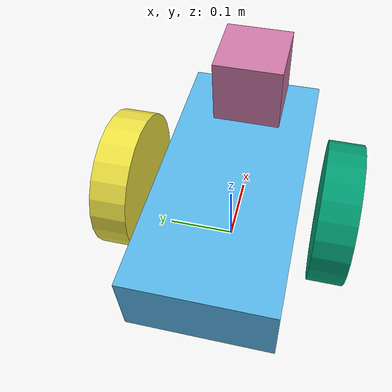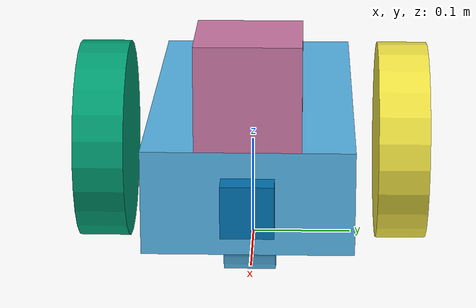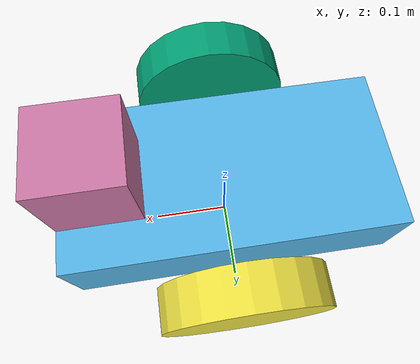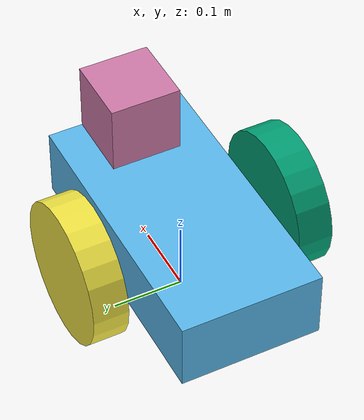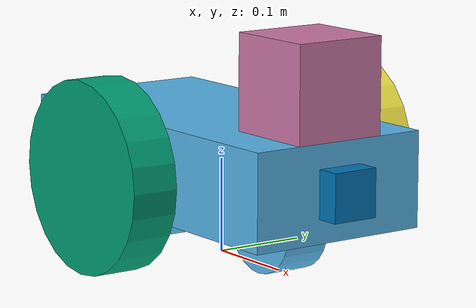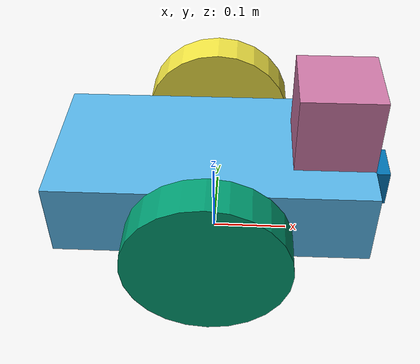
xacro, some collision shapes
<?xml version='1.0'?>

<robot name="my_robot" xmlns:xacro="http://www.ros.org/wiki/xacro">
  <xacro:include filename="$(find my_robot)/urdf/my_robot.gazebo" />
  <link name="robot_footprint"></link>

  <joint name="robot_footprint_joint" type="fixed">
    <origin xyz="0 0 0.1" rpy="0 0 0" />
    <parent link="robot_footprint"/>
    <child link="chassis" />
  </joint>

  <link name='chassis'>
    <pose>0 0 0.1 0 0 0</pose>

    <inertial>
      <mass value="15.0"/>
      <origin xyz="0.0 0 0" rpy=" 0 0 0"/>
      <inertia
          ixx="0.1" ixy="0" ixz="0"
          iyy="0.1" iyz="0"
          izz="0.1"
      />
    </inertial>

    <collision name='collision'>
      <origin xyz="0 0 0" rpy=" 0 0 0"/>
      <geometry>
        <box size=".4 .2 .1"/>
      </geometry>
    </collision>

    <visual name='chassis_visual'>
      <origin xyz="0 0 0" rpy=" 0 0 0"/>
      <geometry>
        <box size=".4 .2 .1"/>
      </geometry>
    </visual>

    <collision name='back_caster_collision'>
      <origin xyz="-0.1 0 -0.05" rpy=" 0 1.5707 1.5707"/>
      <geometry>
        <cylinder radius="0.05"  length="0.1"/>
      </geometry>
    </collision>

    <visual name='back_caster_visual'>
      <origin xyz="-0.1 0 -0.05" rpy=" 0 1.5707 1.5707"/>
      <geometry>
        <cylinder radius="0.05"  length="0.1"/>
      </geometry>
    </visual>

    <collision name='front_caster_collision'>
      <origin xyz="0.1 0 -0.05" rpy=" 0 1.5707 1.5707"/>
      <geometry>
	<cylinder radius="0.0499"  length="0.05"/>
      </geometry>
    </collision>

    <visual name='front_caster_visual'>
      <origin xyz="0.1 0 -0.05" rpy=" 0 1.5707 1.5707"/>
      <geometry>
	<cylinder radius="0.0499"  length="0.05"/>
      </geometry>
    </visual>

  </link>

  <link name='Right_wheel'>

    <inertial>
      <mass value="5.0"/>
      <origin xyz="0.0 0 0" rpy=" 0 1.5707 1.5707"/>
      <inertia
          ixx="0.1" ixy="0" ixz="0"
          iyy="0.1" iyz="0"
          izz="0.1"
      />
    </inertial>

    <collision name='Right_wheel'>
      <origin xyz="0 0 0" rpy=" 0 1.5707 1.5707"/>
      <geometry>
        <cylinder radius="0.1"  length="0.05"/>
      </geometry>
    </collision>

    <visual name='Right_wheel'>
      <origin xyz="0 0 0" rpy=" 0 1.5707 1.5707"/>
      <geometry>
        <cylinder radius="0.1"  length="0.05"/>
      </geometry>
    </visual>
  </link>

  <joint type="continuous" name="right_wheel_hinge">
    <origin xyz="0 -0.15 0" rpy="0 0 0"/>
    <child link="Right_wheel"/>
    <parent link="chassis"/>
    <axis xyz="0 1 0" rpy="0 0 0"/>
    <limit effort="10000" velocity="1000"/>
    <dynamics damping="0.5" friction="1.0"/>
  </joint>

  <link name='Left_wheel'>

    <inertial>
      <mass value="5.0"/>
      <origin xyz="0.0 0 0" rpy=" 0 1.5707 1.5707"/>
      <inertia
          ixx="0.1" ixy="0" ixz="0"
          iyy="0.1" iyz="0"
          izz="0.1"
      />
    </inertial>

    <collision name='Left_wheel'>
      <origin xyz="0 0 0" rpy=" 0 1.5707 1.5707"/>
      <geometry>
        <cylinder radius="0.1"  length="0.05"/>
      </geometry>
    </collision>

    <visual name='Left_wheel'>
      <origin xyz="0 0 0" rpy=" 0 1.5707 1.5707"/>
      <geometry>
        <cylinder radius="0.1"  length="0.05"/>
      </geometry>
    </visual>
  </link>

  <joint type="continuous" name="left_wheel_hinge">
    <origin xyz="0 0.15 0" rpy="0 0 0"/>
    <child link="Left_wheel"/>
    <parent link="chassis"/>
    <axis xyz="0 1 0" rpy="0 0 0"/>
    <limit effort="10000" velocity="1000"/>
    <dynamics damping="0.5" friction="1.0"/>
  </joint>

  <link name='camera'>

    <inertial>
      <mass value="0.1"/>
      <origin xyz="0.0 0 0" rpy=" 0 0 0"/>
      <inertia
          ixx="1e-6" ixy="0" ixz="0"
          iyy="1e-6" iyz="0"
          izz="1e-6"
      />
    </inertial>

    <collision name='camera'>
      <origin xyz="0 0 0" rpy=" 0 0 0"/>
      <geometry>
        <box size="0.05 0.05 0.05"/>
      </geometry>
    </collision>

    <visual name='camera'>
      <origin xyz="0 0 0" rpy=" 0 0 0"/>
      <geometry>
        <box size="0.05 0.05 0.05"/>
      </geometry>
    </visual>
  </link>

  <joint type="fixed" name="camera_joint">
    <origin xyz="0.2 0 0" rpy="0 0 0"/>
    <child link="camera"/>
    <parent link="chassis"/>
    <axis xyz="0 1 0" rpy="0 0 0"/>
  </joint>
>
<link name="camera_link_optical">

  </link>

	<joint name="camera_optical_joint" type="fixed">
   	  <origin xyz="0 0 0" rpy="-1.5707 0 -1.5707"/>
  	  <parent link="camera"/>
  	  <child link="camera_link_optical"/>

 	 </joint>

<link name='hokuyo'>

    <inertial>
      <mass value="1e-5"/>
      <origin xyz="0.0 0 0" rpy=" 0 0 0"/>
      <inertia
          ixx="1e-6" ixy="0" ixz="0"
          iyy="1e-6" iyz="0"
          izz="1e-6"
      />
    </inertial>

    <collision name='hokuyo'>
      <origin xyz="0 0 0" rpy=" 0 0 0"/>
      <geometry>
	<box size="0.1 0.1 0.1"/>
      </geometry>
    </collision>

    <visual name='hokuyo'>
      <origin xyz="0 0 0" rpy=" 0 0 0"/>
      <geometry>
        <mesh filename="package://my_robot/meshes/hokuyo.dae"/>
      </geometry>
    </visual>
  </link>

  <joint type="fixed" name="hokuyo_joint">
    <origin xyz="0.15 0 0.1" rpy="0 0 0"/>
    <child link="hokuyo"/>
    <parent link="chassis"/>
    <axis xyz="0 1 0" rpy="0 0 0"/>
  </joint>

</robot>
